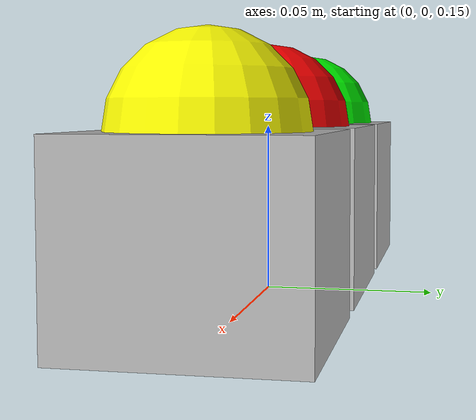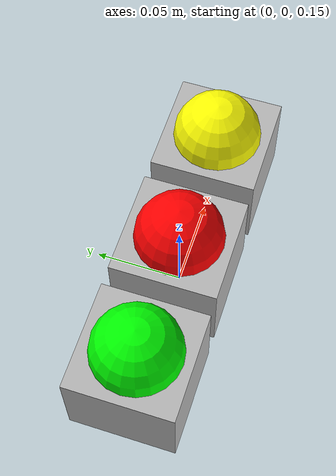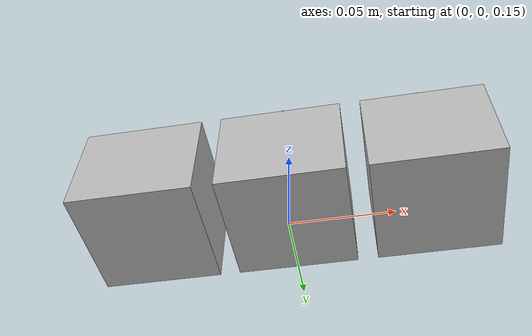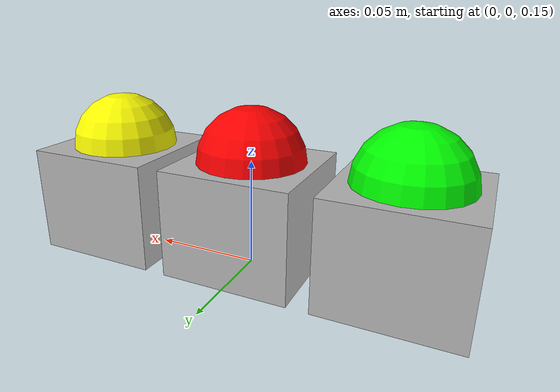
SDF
<?xml version='1.0'?>
<sdf version='1.7'>
  <model name='led_array'>
    <link name='led_array_base'>
      <pose>0 0 0 0 0 0</pose>
    </link>

    <model name='light_model_green'>
      <pose>-0.07 0 0 0 -0 0</pose>
      <link name='head'>
        <pose>0 0 0.175 0 -0 0</pose>
        <visual name='visual'>
          <geometry>
            <box>
              <size>0.06 0.06 0.05</size>
            </box>
          </geometry>
        </visual>
        <self_collide>0</self_collide>
        <enable_wind>0</enable_wind>
        <kinematic>0</kinematic>
      </link>
      <link name='light_source'>
        <pose>0 0 0.2 0 -0 0</pose>
        <light name='lamp' type='spot'>
          <pose>0 0 0 3.14159 3e-06 3.14159</pose>
          <attenuation>
            <range>30</range>
            <linear>0.05</linear>
          </attenuation>
          <diffuse>0 1 0 1</diffuse>
          <specular>1 1 1 1</specular>
          <spot>
            <inner_angle>0.3</inner_angle>
            <outer_angle>0.35</outer_angle>
            <falloff>1</falloff>
          </spot>
          <direction>0 0 -1</direction>
        </light>
        <visual name='lamp'>
          <geometry>
            <sphere>
              <radius>0.025</radius>
            </sphere>
          </geometry>
          <transparency>0.1</transparency>
          <material>
            <ambient>0 1 0 1</ambient>
            <diffuse>0 1 0 1</diffuse>
            <specular>0 1 0 1</specular>
            <emissive>0 1 0 1</emissive>
          </material>
        </visual>
        <self_collide>0</self_collide>
        <enable_wind>0</enable_wind>
        <kinematic>0</kinematic>
      </link>
      <joint name='joint2' type='fixed'>
        <parent>head</parent>
        <child>light_source</child>
      </joint>

      <joint name="green_joint" type="fixed">
        <pose>0 0 0 0 0 0</pose>
        <parent>led_array_base</parent>
        <child>head</child>
      </joint>
      <plugin name='light_control_green' filename='libcontrollable_led_plugin.so'>
        <enable>1</enable>
        <light>
          <id>light_source/lamp</id>
          <enable>1</enable>
        </light>
      </plugin>
    </model>
    <model name='light_model_red'>
      <pose>0 0 0 0 -0 0</pose>
      <link name='head'>
        <pose>0 0 0.175 0 -0 0</pose>
        <visual name='visual'>
          <geometry>
            <box>
              <size>0.06 0.06 0.05</size>
            </box>
          </geometry>
        </visual>
        <self_collide>0</self_collide>
        <enable_wind>0</enable_wind>
        <kinematic>0</kinematic>
      </link>
      <link name='light_source'>
        <pose>0 0 0.2 0 -0 0</pose>
        <light name='lamp' type='spot'>
          <pose>0 0 0 3.14159 3e-06 3.14159</pose>
          <attenuation>
            <range>30</range>
            <linear>0.05</linear>
          </attenuation>
          <diffuse>1 0 0 1</diffuse>
          <specular>1 1 1 1</specular>
          <spot>
            <inner_angle>0.3</inner_angle>
            <outer_angle>0.35</outer_angle>
            <falloff>1</falloff>
          </spot>
          <direction>0 0 -1</direction>
        </light>
        <visual name='lamp'>
          <geometry>
            <sphere>
              <radius>0.025</radius>
            </sphere>
          </geometry>
          <transparency>0.1</transparency>
          <material>
            <ambient>1 0 0 1</ambient>
            <diffuse>1 0 0 1</diffuse>
            <specular>1 0 0 1</specular>
            <emissive>1 0 0 1</emissive>
          </material>
        </visual>
        <self_collide>0</self_collide>
        <enable_wind>0</enable_wind>
        <kinematic>0</kinematic>
      </link>
      <joint name='joint2' type='fixed'>
        <parent>head</parent>
        <child>light_source</child>
      </joint>

      <joint name="red_joint" type="fixed">
        <pose>0 0 0 0 0 0</pose>
        <parent>led_array_base</parent>
        <child>head</child>
      </joint>

      <plugin name='light_control_red' filename='libcontrollable_led_plugin.so'>
        <enable>1</enable>
        <light>
          <id>light_source/lamp</id>
          <enable>1</enable>
        </light>
      </plugin>
    </model>
    <model name='light_model_yellow'>
      <pose>0.07 0 0 0 -0 0</pose>
      <link name='head'>
        <pose>0 0 0.175 0 -0 0</pose>
        <visual name='visual'>
          <geometry>
            <box>
              <size>0.06 0.06 0.05</size>
            </box>
          </geometry>
        </visual>
        <self_collide>0</self_collide>
        <enable_wind>0</enable_wind>
        <kinematic>0</kinematic>
      </link>
      <link name='light_source'>
        <pose>0 0 0.2 0 -0 0</pose>
        <light name='lamp' type='spot'>
          <pose>0 0 0 3.14159 3e-06 3.14159</pose>
          <attenuation>
            <range>30</range>
            <linear>0.05</linear>
          </attenuation>
          <diffuse>1 1 0 1</diffuse>
          <specular>1 1 1 1</specular>
          <spot>
            <inner_angle>0.3</inner_angle>
            <outer_angle>0.35</outer_angle>
            <falloff>1</falloff>
          </spot>
          <direction>0 0 -1</direction>
        </light>
        <visual name='lamp'>
          <geometry>
            <sphere>
              <radius>0.025</radius>
            </sphere>
          </geometry>
          <transparency>0.1</transparency>
          <material>
            <ambient>1 1 0 1</ambient>
            <diffuse>1 1 0 1</diffuse>
            <specular>1 1 0 1</specular>
            <emissive>1 1 0 1</emissive>
          </material>
        </visual>
        <self_collide>0</self_collide>
        <enable_wind>0</enable_wind>
        <kinematic>0</kinematic>
      </link>
      <joint name='joint2' type='fixed'>
        <parent>head</parent>
        <child>light_source</child>
      </joint>
      <joint name="yellow_joint" type="fixed">
        <pose>0 0 0 0 0 0</pose>
        <parent>led_array_base</parent>
        <child>head</child>
      </joint>
      <plugin name='light_control_yellow' filename='libcontrollable_led_plugin.so'>
        <enable>1</enable>
        <light>
          <id>light_source/lamp</id>
          <enable>1</enable>
        </light>
      </plugin>
    </model>
    <allow_auto_disable>1</allow_auto_disable>

  </model>
</sdf>
